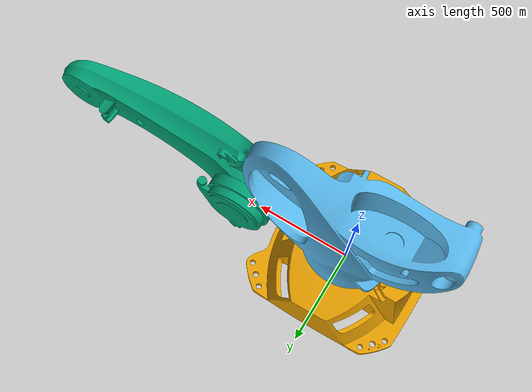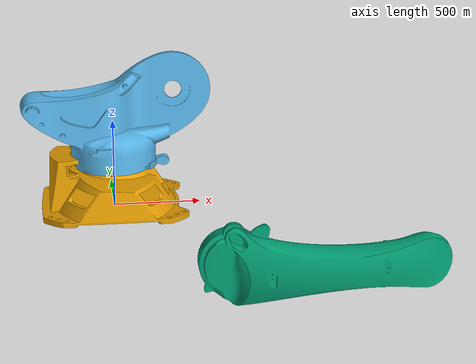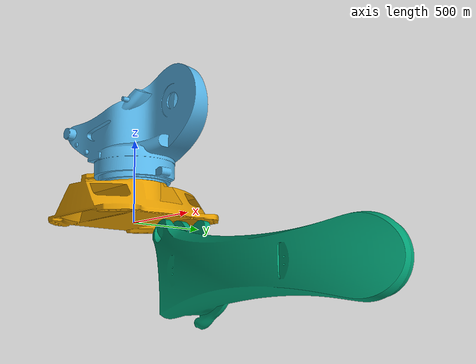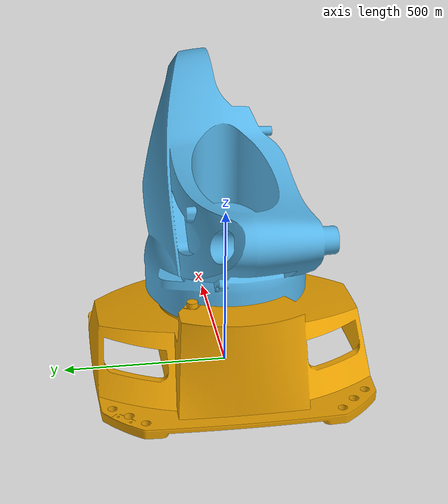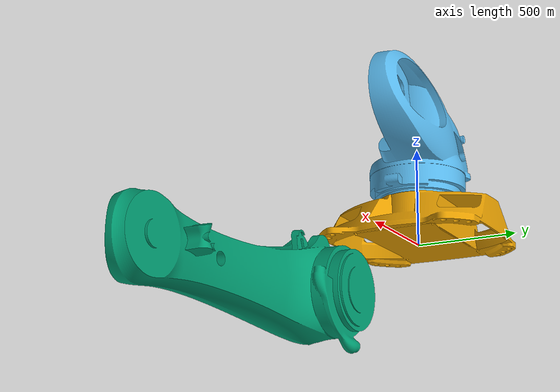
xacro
<?xml version="1.0"?>
<!--Generates a urdf from the macro in kr120r2500pro_macro.xacro -->
<robot name="kuka_kr120r2500pro_gazebo" xmlns:xacro="http://www.ros.org/wiki/xacro">
    <xacro:include filename="$(find kuka_kr120_gazebo)/urdf/kr120r2500pro_gazebo_macro.xacro" />
    <xacro:kuka_kr120r2500pro_gazebo prefix=""/>
</robot>

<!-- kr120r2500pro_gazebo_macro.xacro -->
<!--Generates a urdf from the macro in kr120r2500pro_macro.xacro -->
<robot xmlns:xacro="http://www.ros.org/wiki/xacro">
        <xacro:include filename="$(find kuka_kr120_support)/urdf/kr120r2500pro_macro.xacro" />
        <xacro:include filename="$(find kuka_kr120_gazebo)/urdf/kr120r2500pro_transmission_macro.xacro" />

        <xacro:include filename="$(find kuka_kr120_gazebo)/urdf/gazebo.xacro" />

    <xacro:macro name="kuka_kr120r2500pro_gazebo" params="prefix" >

        <xacro:kuka_kr120r2500pro prefix=""/>
        <xacro:kr120r2500pro_transmission prefix=""/>

        <link name="world" />
        <joint name="world_joint" type="fixed">
            <parent link="world" />
            <child link = "base_link" />
            <origin xyz="0.0 0.0 0.0" rpy="0.0 0.0 0.0" />
        </joint>

    </xacro:macro>

</robot>

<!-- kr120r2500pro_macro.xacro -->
<robot xmlns:xacro="http://www.ros.org/wiki/xacro">

    <xacro:property name="DEG2RAD" value="0.017453292519943295"/>
    <xacro:property name="PI" value="3.141592653589793"/>

    <xacro:macro name="kuka_kr120r2500pro" params="prefix">
        <!-- LINKS -->
            <!-- base link -->
            <link name="${prefix}base_link">
                <inertial>
                    <origin xyz="0 0 0" rpy="0 0 0"/>
                    <mass value="2"/>
                    <inertia ixx="0.01" ixy="0" ixz="0" iyy="0.01" iyz="0" izz="0.01" />
                </inertial>
                <visual>
                    <origin xyz="0 0 0" rpy="0 0 0"/>
                    <geometry>
                        <mesh filename="package://kuka_kr120_support/meshes/r2500pro/visual/base_link.dae" />
                    </geometry>
                </visual>
                <collision>
                    <origin xyz="0 0 0" rpy="0 0 0"/>
                    <geometry>
                        <mesh filename="package://kuka_kr120_support/meshes/r2500pro/collision/base_link.stl" scale="0.001 0.001 0.001" />
                    </geometry>
                </collision>
            </link>
            <!-- link 1 (A1) -->
            <link name="${prefix}link_1">
                <inertial>
                    <origin xyz="0 0 0" rpy="0 0 0"/>
                    <mass value="2"/>
                    <inertia ixx="0.01" ixy="0" ixz="0" iyy="0.01" iyz="0" izz="0.01" />
                </inertial>
                <!-- main link body -->
                <visual>
                    <origin xyz="0 0 -0.2156" rpy="0 0 0"/>
                    <geometry>
                        <mesh filename="package://kuka_kr120_support/meshes/r2500pro/visual/link_1.dae" />
                    </geometry>
                </visual>
                <collision>
                    <origin xyz="0 0 -0.2156" rpy="0 0 0"/>
                    <geometry>
                        <mesh filename="package://kuka_kr120_support/meshes/r2500pro/collision/link_1.stl" scale="0.001 0.001 0.001" />
                    </geometry>
                </collision>
            </link>
            <!-- link 2 -->
            <link name="${prefix}link_2">
                <inertial>
                    <origin xyz="0 0 0" rpy="0 0 0"/>
                    <mass value="2"/>
                    <inertia ixx="0.01" ixy="0" ixz="0" iyy="0.01" iyz="0" izz="0.01" />
                </inertial>
                <visual>
                    <origin xyz="-0.35 0 -0.675" rpy="0 0 0"/>
                    <geometry>
                        <mesh filename="package://kuka_kr120_support/meshes/r2500pro/visual/link_2.dae"/>
                    </geometry>
                </visual>
                <collision>
                    <origin xyz="-0.35 0 -0.675" rpy="0 0 0"/>
                    <geometry>
                        <mesh filename="package://kuka_kr120_support/meshes/r2500pro/collision/link_2.stl" scale="0.001 0.001 0.001" />
                    </geometry>
                </collision>
            </link>
            <!-- link 3 -->
            <link name="${prefix}link_3">
                <inertial>
                    <origin xyz="0 0 0" rpy="0 0 0"/>
                    <mass value="2"/>
                    <inertia ixx="0.01" ixy="0" ixz="0" iyy="0.01" iyz="0" izz="0.01" />
                </inertial>
                <visual>
                    <origin xyz="-0.35 0 -1.825" rpy="0 0 0"/>
                    <geometry>
                        <mesh filename="package://kuka_kr120_support/meshes/r2500pro/visual/link_3.dae" />
                    </geometry>
                </visual>
                <collision>
                    <origin xyz="-0.35 0 -1.825" rpy="0 0 0"/>
                    <geometry>
                        <mesh filename="package://kuka_kr120_support/meshes/r2500pro/collision/link_3.stl" scale="0.001 0.001 0.001" />
                    </geometry>
                </collision>
            </link>
            <!-- link 4 -->
            <link name="${prefix}link_4">
                <inertial>
                    <origin xyz="0 0 0" rpy="0 0 0"/>
                    <mass value="2"/>
                    <inertia ixx="0.01" ixy="0" ixz="0" iyy="0.01" iyz="0" izz="0.01" />
                </inertial>
                <visual>
                    <origin xyz="-1.094 0 -1.784" rpy="0 0 0"/>
                    <geometry>
                        <mesh filename="package://kuka_kr120_support/meshes/r2500pro/visual/link_4.dae" />
                    </geometry>
                </visual>
                <collision>
                    <origin xyz="-1.094 0 -1.784" rpy="0 0 0"/>
                    <geometry>
                        <mesh filename="package://kuka_kr120_support/meshes/r2500pro/collision/link_4.stl" scale="0.001 0.001 0.001" />
                    </geometry>
                </collision>
            </link>
            <!-- link 5 -->
            <link name="${prefix}link_5">
                <inertial>
                    <origin xyz="0 0 0" rpy="0 0 0"/>
                    <mass value="2"/>
                    <inertia ixx="0.01" ixy="0" ixz="0" iyy="0.01" iyz="0" izz="0.01" />
                </inertial>
                <visual>
                    <origin xyz="-1.350 0 -1.784" rpy="0 0 0"/>
                    <geometry>
                        <mesh filename="package://kuka_kr120_support/meshes/r2500pro/visual/link_5.dae" />
                    </geometry>
                </visual>
                <collision>
                    <origin xyz="-1.350 0 -1.784" rpy="0 0 0"/>
                    <geometry>
                        <mesh filename="package://kuka_kr120_support/meshes/r2500pro/collision/link_5.stl" scale="0.001 0.001 0.001" />
                    </geometry>
                </collision>
            </link>
            <!-- link 6 -->
            <link name="${prefix}link_6">
                <inertial>
                    <origin xyz="0 0 0" rpy="0 0 0"/>
                    <mass value="2"/>
                    <inertia ixx="0.01" ixy="0" ixz="0" iyy="0.01" iyz="0" izz="0.01" />
                </inertial>
                <visual>
                    <origin xyz="-1.565 0 -1.784" rpy="0 0 0"/>
                    <geometry>
                        <mesh filename="package://kuka_kr120_support/meshes/r2500pro/visual/link_6.dae" />
                    </geometry>
                    <material name="gray">
                        <color rgba="0.5 0.5 0.5 1"/>
                    </material>
                </visual>
                <collision>
                    <origin xyz="-1.538 0 -1.784" rpy="0 0 0"/>
                    <geometry>
                        <mesh filename="package://kuka_kr120_support/meshes/r2500pro/collision/link_6.stl" scale="0.001 0.001 0.001" />
                    </geometry>
                </collision>
            </link>
            <!-- tool 0 -->
            <link name="${prefix}tool0"/>
        <!-- END LINKS -->

        <!-- JOINTS -->
            <!-- joint 1 (A1) -->
            <joint name="${prefix}joint_1" type="revolute">
                <origin xyz="0 0 0.2156" rpy="0 0 0"/>
                <parent link="${prefix}base_link"/>
                <child link="${prefix}link_1"/>
                <axis xyz="0 0 -1"/>
                <limit effort="0" lower="${-DEG2RAD * 185}" upper="${DEG2RAD * 185}" velocity="${DEG2RAD * 156}"/>
            </joint>
            <!-- joint 2 (A2) -->
            <joint name="${prefix}joint_2" type="revolute">
                <origin xyz="0.35 0 0.4594" rpy="0 ${PI/2} 0"/>
                <parent link="${prefix}link_1"/>
                <child link="${prefix}link_2"/>
                <axis xyz="0 1 0"/>
                <limit effort="0" lower="${-DEG2RAD * 155}" upper="${DEG2RAD * 35}" velocity="${DEG2RAD * 156}"/>
            </joint>
            <!-- joint 3 (A3) -->
            <joint name="${prefix}joint_3" type="revolute">
                <origin xyz="0 0 1.150" rpy="0 ${-PI/2} 0"/>
                <parent link="${prefix}link_2"/>
                <child link="${prefix}link_3"/>
                <axis xyz="0 1 0"/>
                <limit effort="0" lower="${-DEG2RAD * 130}" upper="${DEG2RAD * 154}" velocity="${DEG2RAD * 156}"/>
            </joint>
            <!-- joint 4 (A4) -->
            <joint name="${prefix}joint_4" type="revolute">
                <origin xyz="0.744 0 -0.041" rpy="0 0 0"/>
                <parent link="${prefix}link_3"/>
                <child link="${prefix}link_4"/>
                <axis xyz="-1 0 0"/>
                <limit effort="0" lower="${-DEG2RAD * 350}" upper="${DEG2RAD * 350}" velocity="${DEG2RAD * 330}"/>
            </joint>
            <!-- joint 5 (A5) -->
            <joint name="${prefix}joint_5" type="revolute">
                <origin xyz="0.256 0 0" rpy="0 0 0"/>
                <parent link="${prefix}link_4"/>
                <child link="${prefix}link_5"/>
                <axis xyz="0 1 0"/>
                <limit effort="0" lower="${-DEG2RAD * 130}" upper="${DEG2RAD * 130}" velocity="${DEG2RAD * 330}"/>
            </joint>
            <!-- joint 6 (A6) -->
            <joint name="${prefix}joint_6" type="revolute">
                <origin xyz="0.215 0 0" rpy="0 0 0"/>
                <parent link="${prefix}link_5"/>
                <child link="${prefix}link_6"/>
                <axis xyz="-1 0 0"/>
                <limit effort="0" lower="${-DEG2RAD * 350}" upper="${DEG2RAD * 350}" velocity="${DEG2RAD * 615}"/>
            </joint>
            <!-- tool frame - fixed frame -->
            <joint name="${prefix}joint_6-tool0" type="fixed">
                <parent link="${prefix}link_6"/>
                <child link="${prefix}tool0"/>
                <origin xyz="0 0 0" rpy="0 ${PI/2} 0"/>
            </joint>
        <!-- END JOINTS -->

    </xacro:macro>
</robot>
